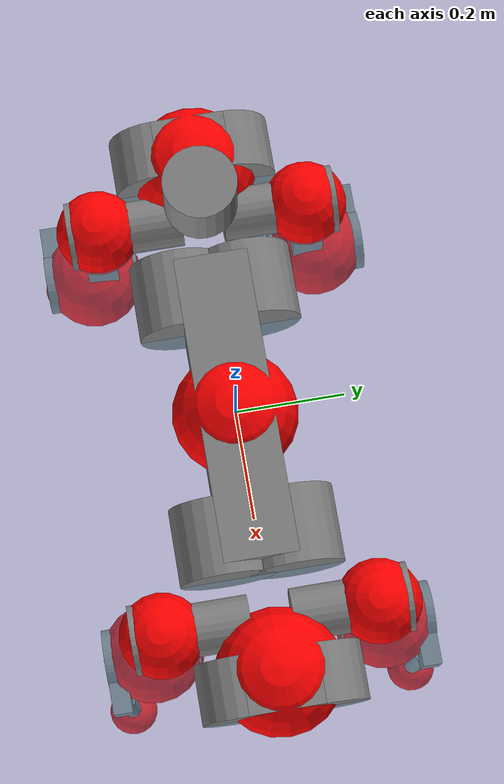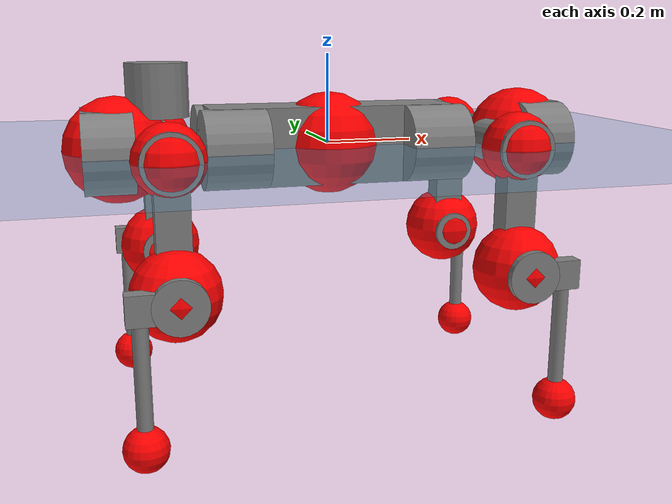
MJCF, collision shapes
<mujoco model="anymal_c">
  <compiler angle="radian" assetdir="assets" balanceinertia="true" inertiafromgeom="false"/>

  <option timestep="0.005" density="1.2" viscosity="2e-05"/>

  <size nkey="1"/>

  <visual>
    <quality shadowsize="8192"/>
    <map shadowclip="0.5"/>
  </visual>

  <default>
    <default class="/">
      <material specular="0" shininess="0.25"/>
      <geom contype="0" conaffinity="0" group="1" solref="-1000 -80"/>
      <site size="0.01 0.005 0.005" group="5"/>
      <general forcelimited="true" forcerange="-80 80" biastype="affine" gainprm="80" biasprm="0 -80 -2"/>
      <default class="anymal_c">
        <joint armature="0.01" damping="0.01" frictionloss="0.1"/>
        <default class="visual">
          <geom type="mesh" group="2"/>
          <default class="visual_zflip"/>
        </default>
        <default class="collision">
          <geom type="cylinder" group="3"/>
          <default class="foot">
            <geom size="0.03 0 0" type="sphere" condim="6" priority="1" friction="0.8 0.02 0.01" solimp="0.015 1 0.03"/>
          </default>
        </default>
      </default>
      <default class="reward_collision_sphere">
        <geom group="5" rgba="1 0 0 1"/>
      </default>
    </default>
  </default>

  <asset>
    <texture type="skybox" colorspace="auto" name="//unnamed_texture_0" builtin="gradient" rgb1="0.95 0.95 0.95" rgb2="0.95 0.95 0.95" width="100" height="600"/>
    <texture type="2d" colorspace="auto" name="texplane" builtin="checker" rgb1="0.345 0.575 0.748" rgb2="0.345 0.575 0.748" markrgb="1 1 1" width="512" height="512"/>
    <texture type="2d" colorspace="linear" name="base" file="base.png"/>
    <texture type="2d" colorspace="linear" name="top_shell" file="top_shell.png"/>
    <texture type="2d" colorspace="linear" name="bottom_shell" file="bottom_shell.png"/>
    <texture type="2d" colorspace="linear" name="remote" file="remote.png"/>
    <texture type="2d" colorspace="linear" name="hatch" file="hatch.png"/>
    <texture type="2d" colorspace="linear" name="handle" file="handle.png"/>
    <texture type="2d" colorspace="linear" name="face" file="face.png"/>
    <texture type="2d" colorspace="linear" name="battery" file="battery.png"/>
    <texture type="2d" colorspace="linear" name="lidar_cage" file="lidar_cage.png"/>
    <texture type="2d" colorspace="linear" name="depth_camera" file="depth_camera.png"/>
    <texture type="2d" colorspace="linear" name="wide_angle_camera" file="wide_angle_camera.png"/>
    <texture type="2d" colorspace="linear" name="lidar" file="lidar.png"/>
    <texture type="2d" colorspace="linear" name="drive" file="drive.png"/>
    <texture type="2d" colorspace="linear" name="hip_l" file="hip_l.png"/>
    <texture type="2d" colorspace="linear" name="shank_l" file="shank_l.png"/>
    <texture type="2d" colorspace="linear" name="foot" file="foot.png"/>
    <texture type="2d" colorspace="linear" name="thigh" file="thigh.png"/>
    <texture type="2d" colorspace="linear" name="shank_r" file="shank_r.png"/>
    <texture type="2d" colorspace="linear" name="hip_r" file="hip_r.png"/>
    <material name="MatPlane" class="/" texture="texplane" texuniform="true" texrepeat="2 2" specular="0.9" shininess="0.5"/>
    <material name="black_plastic" class="/" rgba="0.007 0.007 0.007 1"/>
    <material name="green" class="/" rgba="0.052 0.178 0.033 1"/>
    <material name="red" class="/" rgba="0.178 0.006 0.005 1"/>
    <material name="yellow" class="/" rgba="0.178 0.119 0.006 1"/>
    <material name="lwl" class="/" rgba="0.8 0.8 0.8 1"/>
    <material name="base" class="/" texture="base"/>
    <material name="top_shell" class="/" texture="top_shell"/>
    <material name="bottom_shell" class="/" texture="bottom_shell"/>
    <material name="hip_l" class="/" texture="hip_l"/>
    <material name="thigh" class="/" texture="thigh"/>
    <material name="shank_l" class="/" texture="shank_l"/>
    <material name="foot" class="/" texture="foot"/>
    <material name="hip_r" class="/" texture="hip_r"/>
    <material name="shank" class="/" texture="shank_r"/>
    <material name="hatch" class="/" texture="hatch"/>
    <material name="remote" class="/" texture="remote"/>
    <material name="handle" class="/" texture="handle"/>
    <material name="face" class="/" texture="face"/>
    <material name="depth_camera" class="/" texture="depth_camera"/>
    <material name="wide_angle_camera" class="/" texture="wide_angle_camera"/>
    <material name="battery" class="/" texture="battery"/>
    <material name="lidar_cage" class="/" texture="lidar_cage"/>
    <material name="lidar" class="/" texture="lidar"/>
    <material name="drive" class="/" texture="drive"/>
    <mesh name="base_0" class="/" file="base_0.obj"/>
    <mesh name="base_1" class="/" file="base_1.obj"/>
    <mesh name="base_2" class="/" file="base_2.obj"/>
    <mesh name="base_3" class="/" file="base_3.obj"/>
    <mesh name="base_4" class="/" file="base_4.obj"/>
    <mesh name="base_5" class="/" file="base_5.obj"/>
    <mesh name="top_shell" class="/" file="top_shell.obj"/>
    <mesh name="bottom_shell" class="/" file="bottom_shell.obj"/>
    <mesh name="remote" class="/" file="remote.obj"/>
    <mesh name="handle" class="/" file="handle.obj"/>
    <mesh name="face" class="/" file="face.obj"/>
    <mesh name="wide_angle_camera" class="/" file="wide_angle_camera.obj"/>
    <mesh name="depth_camera" class="/" file="depth_camera.obj"/>
    <mesh name="battery" class="/" file="battery.obj"/>
    <mesh name="lidar_cage" class="/" file="lidar_cage.obj"/>
    <mesh name="lidar" class="/" file="lidar.obj"/>
    <mesh name="drive" class="/" file="drive.obj"/>
    <mesh name="hip_l" class="/" file="hip_l.obj"/>
    <mesh name="thigh" class="/" file="thigh.obj"/>
    <mesh name="shank_l" class="/" file="shank_l.obj"/>
    <mesh name="foot" class="/" file="foot.obj"/>
    <mesh name="hip_r" class="/" file="hip_r.obj"/>
    <mesh name="hatch" class="/" file="hatch.obj"/>
    <mesh name="shank_r" class="/" file="shank_r.obj"/>
  </asset>

  <worldbody>
    <geom name="floor" class="/" size="100 100 0.125" type="plane" group="0" material="MatPlane"/>
    <light name="toplight_shadow" class="/" pos="0 0 5" dir="0.0990148 0.0990148 -0.990148" type="directional" ambient="0.04 0.04 0.04" diffuse="0.55 0.55 0.55" specular="0.12 0.12 0.12"/>
    <light name="toplight_fill" class="/" pos="0 0 5" dir="0.0990148 0.0990148 -0.990148" type="directional" castshadow="false" ambient="0.04 0.04 0.04" diffuse="0.3 0.3 0.3" specular="0.08 0.08 0.08"/>
    <body name="trunk" childclass="anymal_c" pos="0.0017884 -0.0010275 -0.000459634" quat="1 -0.000124282 0.000229009 -8.64489e-05">
      <inertial pos="0.0024626 -0.000327683 0.0467698" quat="0.501119 0.498352 0.498849 0.501672" mass="17.0461" diaginertia="0.864412 0.366186 0.16672"/>
      <joint name="//unnamed_joint_0" type="free" armature="0" damping="0" frictionloss="0"/>
      <geom name="//unnamed_geom_1" class="visual" material="green" mesh="base_0"/>
      <geom name="//unnamed_geom_2" class="visual" material="yellow" mesh="base_1"/>
      <geom name="//unnamed_geom_3" class="visual" material="red" mesh="base_2"/>
      <geom name="//unnamed_geom_4" class="visual" material="black_plastic" mesh="base_3"/>
      <geom name="//unnamed_geom_5" class="visual" material="lwl" mesh="base_4"/>
      <geom name="//unnamed_geom_6" class="visual" material="base" mesh="base_5"/>
      <geom name="trunk_1" class="collision" size="0.280339 0.067668 0.0870017" type="box"/>
      <geom name="trunk_2" class="collision" size="0.0870017 0.0700847" pos="0.229364 0.0627905 0" quat="0.707107 0 0.707107 0"/>
      <geom name="trunk_3" class="collision" size="0.0870017 0.0700847" pos="-0.229364 0.0627905 0" quat="0.707107 0 0.707107 0"/>
      <geom name="trunk_4" class="collision" size="0.0870017 0.0700847" pos="0.229364 -0.0627905 0" quat="0.707107 0 0.707107 0"/>
      <geom name="trunk_5" class="collision" size="0.0870017 0.0700847" pos="-0.229364 -0.0627905 0" quat="0.707107 0 0.707107 0"/>
      <geom name="//unnamed_geom_12" class="visual" material="top_shell" mesh="top_shell"/>
      <geom name="//unnamed_geom_13" class="visual" material="bottom_shell" mesh="bottom_shell"/>
      <geom name="//unnamed_geom_14" class="visual" material="remote" mesh="remote"/>
      <geom name="//unnamed_geom_15" class="visual" material="handle" mesh="handle"/>
      <geom name="//unnamed_geom_16" class="visual" pos="0.43711 0 0" quat="1 0 0 0" material="face" mesh="face"/>
      <geom name="trunk_6" class="collision" size="0.0531677 0.067668 0.0870017" pos="0.49511 0 0" type="box"/>
      <geom name="//unnamed_geom_18" class="collision" size="0.0870017 0.0531677" pos="0.49511 0.0627905 0" quat="0.707107 0 0.707107 0"/>
      <geom name="//unnamed_geom_19" class="collision" size="0.0870017 0.0531677" pos="0.49511 -0.0627905 0" quat="0.707107 0 0.707107 0"/>
      <geom name="//unnamed_geom_20" class="visual" pos="0.486828 0 -0.0268903" quat="0.965926 0 0.258819 0" material="depth_camera" mesh="depth_camera"/>
      <geom name="//unnamed_geom_21" class="visual" pos="0.540983 0 0.0141991" material="wide_angle_camera" mesh="wide_angle_camera"/>
      <geom name="//unnamed_geom_22" class="visual_zflip" pos="-0.43711 0 0" quat="0 0 0 1" material="face" mesh="face"/>
      <geom name="trunk_7" class="collision" size="0.0531677 0.067668 0.0870017" pos="-0.49511 0 0" quat="0 0 0 1" type="box"/>
      <geom name="//unnamed_geom_24" class="collision" size="0.0870017 0.0531677" pos="-0.49511 -0.0627905 0" quat="0 -0.707107 0 0.707107"/>
      <geom name="//unnamed_geom_25" class="collision" size="0.0870017 0.0531677" pos="-0.49511 0.0627905 0" quat="0 -0.707107 0 0.707107"/>
      <geom name="//unnamed_geom_26" class="visual" pos="-0.486828 0 -0.0268903" quat="0 -0.258819 0 0.965926" material="depth_camera" mesh="depth_camera"/>
      <geom name="//unnamed_geom_27" class="visual_zflip" pos="-0.540983 0 0.0141991" quat="0 0 0 1" material="wide_angle_camera" mesh="wide_angle_camera"/>
      <geom name="//unnamed_geom_28" class="visual" material="battery" mesh="battery"/>
      <geom name="//unnamed_geom_29" class="visual" pos="0 0.0665135 0.0283599" quat="0.683013 -0.183013 0.183013 0.683013" material="depth_camera" mesh="depth_camera"/>
      <geom name="//unnamed_geom_30" class="visual" pos="0 -0.0665135 0.0283599" quat="0.683013 0.183013 0.183013 -0.683013" material="depth_camera" mesh="depth_camera"/>
      <geom name="//unnamed_geom_31" class="visual" pos="-0.383856 0 0.0697148" quat="1 0 0 0" material="lidar_cage" mesh="lidar_cage"/>
      <geom name="trunk_8" class="collision" size="0.067668 0.0580011" pos="-0.383856 0 0.126625"/>
      <geom name="//unnamed_geom_33" class="visual" pos="-0.383856 -6.18938e-05 0.134877" quat="0.707107 0 0 -0.707107" material="lidar" mesh="lidar"/>
      <geom name="//unnamed_geom_34" class="visual" pos="0.316259 0.093307 -8.88284e-10" quat="0.258819 0.965926 0 0" material="drive" mesh="drive"/>
      <geom name="//unnamed_geom_35" class="visual" pos="0.316259 -0.093307 8.88284e-10" quat="0.258819 -0.965926 0 0" material="drive" mesh="drive"/>
      <geom name="//unnamed_geom_36" class="visual" pos="-0.316259 0.093307 8.88284e-10" quat="0 0 0.965926 -0.258819" material="drive" mesh="drive"/>
      <geom name="//unnamed_geom_37" class="visual" pos="-0.316259 -0.093307 -8.88284e-10" quat="0 0 -0.965926 -0.258819" material="drive" mesh="drive"/>
      <geom name="//unnamed_geom_38" class="visual" pos="0.122328 0 0.0692406" quat="1 0 0 0" material="hatch" mesh="hatch"/>
      <geom name="//unnamed_geom_39" class="reward_collision_sphere" size="0.116002"/>
      <geom name="//unnamed_geom_40" class="reward_collision_sphere" size="0.116002" pos="0.474547 0 0"/>
      <geom name="//unnamed_geom_41" class="reward_collision_sphere" size="0.116002" pos="-0.474547 0 0"/>
      <site name="imu" pos="0.25855 0.00559052 0.0326861" size="0.00966685"/>
      <camera name="track" pos="0 -1.79401 0" quat="0.707107 0.707107 0 0" mode="trackcom"/>
      <camera name="ego_camera" pos="0.474547 0 -0.0379401" quat="-0.5 -0.5 0.5 0.5"/>
      <body name="LF_HIP" pos="0.316965 0.0938334 0.00111067" quat="0.258485 0.966015 0.000507947 0.000380094">
        <inertial pos="0.05774 -0.0124081 -0.00748742" quat="-0.127839 0.709829 -0.134853 0.679423" mass="2.52329" diaginertia="0.0076646 0.00283478 0.00251152"/>
        <joint name="LF_HAA" pos="0 0 0" axis="0.999895 -0.0143461 0.00191251" range="-0.729147 0.491105" armature="0.00858549" damping="0.00955011" frictionloss="0.0929738"/>
        <geom name="//unnamed_geom_42" class="visual" pos="0 -5.22537e-05 8.58263e-06" quat="0.258819 -0.965926 0 0" material="hip_l" mesh="hip_l"/>
        <geom name="//unnamed_geom_43" class="visual" pos="0.0631674 -0.0744848 -0.0433847" quat="0.183013 -0.683013 0.683013 0.183013" material="drive" mesh="drive"/>
        <geom name="//unnamed_geom_44" class="collision" size="0.0483343 0.067668" pos="0.0631674 -0.010728 -0.0065494" quat="-0.353553 -0.612372 0.612372 -0.353553"/>
        <body name="LF_THIGH" pos="0.0638054 -0.0646313 -0.040151" quat="0.182646 -0.683107 0.682962 0.183216">
          <inertial pos="0.0326403 8.17442e-06 -0.2353" quat="0.993135 -0.00806746 -0.0785526 0.0863012" mass="2.81471" diaginertia="0.0398453 0.0175696 0.00326128"/>
          <joint name="LF_HFE" pos="0 0 0" axis="0.999996 0.001321 0.00258227" range="-3.16359 3.13908" armature="0.0103735" damping="0.0109192" frictionloss="0.0982883"/>
          <geom name="//unnamed_geom_45" class="visual" pos="0.00313445 4.93917e-06 0" quat="0.707107 0 0 -0.707107" material="thigh" mesh="thigh"/>
          <geom name="//unnamed_geom_46" class="collision" size="0.0628346 0.0386674" pos="0.0421819 0 0" quat="0.5 0.5 -0.5 -0.5"/>
          <geom name="//unnamed_geom_47" class="collision" size="0.0362507 0.0290006 0.136606" pos="0.0316364 0 -0.134037" quat="0.707107 0 0 -0.707107" type="box"/>
          <geom name="//unnamed_geom_48" class="visual" pos="0.105771 0 -0.270323" quat="1 0 0 0" material="drive" mesh="drive"/>
          <geom name="//unnamed_geom_49" class="collision" size="0.0483343 0.067668" pos="0.0319528 0 -0.270323" quat="0.707107 0 0.707107 0"/>
          <geom name="//unnamed_geom_50" class="reward_collision_sphere" size="0.0773348" pos="0.0263637 0 0"/>
          <body name="LF_SHANK" pos="0.106118 -0.00274147 -0.269638" quat="1 0.00020089 -0.000104809 3.6053e-05">
            <inertial pos="0.00495821 -0.0545205 -0.0766968" quat="0.992073 -0.120809 -0.00188805 -0.0345231" mass="0.529632" diaginertia="0.0130848 0.00536323 0.000842171"/>
            <joint name="LF_KFE" pos="0 0 0" axis="0.99999 0.00348207 -0.00281181" range="-3.14327 3.1363" armature="0.00967252" damping="0.00333218" frictionloss="0.099303"/>
            <geom name="//unnamed_geom_51" class="visual" pos="0.00102208 0.00544977 0" quat="0.707107 0 0 -0.707107" material="shank_l" mesh="shank_l"/>
            <geom name="LF_kfe_act" class="collision" size="0.0580011 0.0193337" pos="0.021091 0 0" quat="0.5 0.5 -0.5 -0.5"/>
            <geom name="//unnamed_geom_53" class="collision" size="0.0555834 0.0326256 0.018367" pos="0.021091 -0.051577 0" quat="0.5 0.5 -0.5 -0.5" type="box"/>
            <geom name="//unnamed_geom_54" class="visual" pos="0.0137616 -0.0771355 -0.320565" quat="0.382683 0 0 -0.92388" material="foot" mesh="foot"/>
            <geom name="LF_calf" class="collision" size="0.016917 0.136546" pos="0.0137619 -0.0788918 -0.160282" quat="0.707107 0 0 -0.707107"/>
            <geom name="LF_foot" class="foot" size="0.029956" pos="0.0137619 -0.0788918 -0.299224" quat="0.707107 0 0 -0.707107"/>
            <geom name="//unnamed_geom_57" class="reward_collision_sphere" size="0.0966685" pos="-0.0527274 0 0"/>
            <geom name="//unnamed_geom_58" class="reward_collision_sphere" size="0.0483343" pos="0.0137619 -0.0788918 -0.299224"/>
            <site name="LF_foot" class="foot" pos="0.0137619 -0.0788918 -0.299224" quat="0.707107 0 0 -0.707107" size="0.00966685"/>
          </body>
        </body>
      </body>
      <body name="RF_HIP" pos="0.314467 -0.0915824 -0.000534194" quat="0.258841 -0.96592 5.93995e-05 1.47773e-05">
        <inertial pos="0.0621867 0.0131095 -0.00993649" quat="0.135148 0.678911 0.128364 0.710167" mass="2.59056" diaginertia="0.00781594 0.00292731 0.00259179"/>
        <joint name="RF_HAA" pos="0 0 0" axis="0.999943 -0.0105776 -0.00153823" range="-0.534607 0.730937" armature="0.00978553" damping="0.0128423" frictionloss="0.0898677"/>
        <geom name="//unnamed_geom_59" class="visual" pos="0 5.22533e-05 8.58261e-06" quat="0.258819 0.965926 0 0" material="hip_r" mesh="hip_r"/>
        <geom name="//unnamed_geom_60" class="visual" pos="0.0631674 0.0744848 -0.0433847" quat="0.183013 0.683013 0.683013 -0.183013" material="drive" mesh="drive"/>
        <geom name="//unnamed_geom_61" class="collision" size="0.0483343 0.067668" pos="0.0631674 0.010728 -0.0065494" quat="-0.353553 0.612372 0.612372 0.353553"/>
        <body name="RF_THIGH" pos="0.063587 0.0659638 -0.0403685" quat="0.182933 0.682898 0.683163 -0.182961">
          <inertial pos="0.0332745 0.00236331 -0.233402" quat="0.992764 -0.00481051 -0.0808301 0.0886722" mass="2.7399" diaginertia="0.0392281 0.017184 0.00317346"/>
          <joint name="RF_HFE" pos="0 0 0" axis="0.999989 -0.000923245 -0.00469171" stiffness="0.00248422" range="-3.15146 3.12556" armature="0.0101012" damping="0.00200018" frictionloss="0.0962128"/>
          <geom name="//unnamed_geom_62" class="visual" pos="0.00313445 4.93917e-06 0" quat="0.707107 0 0 -0.707107" material="thigh" mesh="thigh"/>
          <geom name="//unnamed_geom_63" class="collision" size="0.0628346 0.0386674" pos="0.0421819 0 0" quat="0.5 0.5 0.5 0.5"/>
          <geom name="//unnamed_geom_64" class="collision" size="0.0362507 0.0290006 0.136606" pos="0.0316364 0 -0.134037" quat="0.707107 0 0 0.707107" type="box"/>
          <geom name="//unnamed_geom_65" class="visual" pos="0.105771 0 -0.270323" quat="1 0 0 0" material="drive" mesh="drive"/>
          <geom name="//unnamed_geom_66" class="collision" size="0.0483343 0.067668" pos="0.0319528 0 -0.270323" quat="0.707107 0 0.707107 0"/>
          <geom name="//unnamed_geom_67" class="reward_collision_sphere" size="0.0773348" pos="0.0263637 0 0"/>
          <body name="RF_SHANK" pos="0.105316 -0.000876013 -0.268531" quat="0.999999 0.000800621 -0.000389715 -0.000792841">
            <inertial pos="0.00843994 0.0548167 -0.0748337" quat="0.992933 0.11592 -0.00107021 0.0254168" mass="0.520386" diaginertia="0.0131044 0.00545205 0.000881365"/>
            <joint name="RF_KFE" pos="0 0 0" axis="1 -0.000443826 9.56345e-05" range="-3.17565 3.12804" armature="0.00984237" damping="0.0175553" frictionloss="0.104885"/>
            <geom name="//unnamed_geom_68" class="visual" pos="0.00102207 -0.00544976 0" quat="0.707107 0 0 0.707107" material="shank" mesh="shank_r"/>
            <geom name="RF_kfe_act" class="collision" size="0.0580011 0.0193337" pos="0.021091 0 0" quat="0.5 0.5 0.5 0.5"/>
            <geom name="//unnamed_geom_70" class="collision" size="0.0555834 0.0326256 0.018367" pos="0.021091 0.051577 0" quat="0.5 0.5 0.5 0.5" type="box"/>
            <geom name="//unnamed_geom_71" class="visual" pos="0.0137621 0.0771355 -0.320565" quat="0.382683 0 0 0.92388" material="foot" mesh="foot"/>
            <geom name="RF_calf" class="collision" size="0.016917 0.136546" pos="0.0137619 0.0788918 -0.160282" quat="0.707107 0 0 0.707107"/>
            <geom name="RF_foot" class="foot" size="0.0288028" pos="0.0137619 0.0788918 -0.299224" quat="0.707107 0 0 0.707107"/>
            <geom name="//unnamed_geom_74" class="reward_collision_sphere" size="0.0966685" pos="-0.0527274 0 0"/>
            <geom name="//unnamed_geom_75" class="reward_collision_sphere" size="0.0483343" pos="0.0137619 0.0788918 -0.299224"/>
            <site name="RF_foot" class="foot" pos="0.0137619 0.0788918 -0.299224" quat="0.707107 0 0 0.707107" size="0.00966685"/>
          </body>
        </body>
      </body>
      <body name="LH_HIP" pos="-0.31319 0.0921547 0.000471106" quat="7.53959e-05 0.000313759 0.965897 -0.258926">
        <inertial pos="0.0620581 0.0110392 -0.0077403" quat="0.128115 0.682465 0.128162 0.708098" mass="2.53257" diaginertia="0.00769975 0.00285144 0.00247432"/>
        <joint name="LH_HAA" pos="0 0 0" axis="0.999997 -6.93082e-05 0.00234851" range="-0.48735 0.702269" armature="0.00971154" damping="0.0101998" frictionloss="0.101636"/>
        <geom name="//unnamed_geom_76" class="visual" pos="0 5.22533e-05 8.58261e-06" quat="-0.258819 -0.965926 0 0" material="hip_r" mesh="hip_r"/>
        <geom name="//unnamed_geom_77" class="visual" pos="0.0631674 0.0744848 -0.0433847" quat="0.183013 0.683013 0.683013 -0.183013" material="drive" mesh="drive"/>
        <geom name="//unnamed_geom_78" class="collision" size="0.0483343 0.067668" pos="0.0631674 0.010728 -0.0065494" quat="-0.353553 0.612372 0.612372 0.353553"/>
        <body name="LH_THIGH" pos="0.0619976 0.0645372 -0.0401421" quat="0.183382 0.682919 0.683021 -0.182959">
          <inertial pos="0.0322958 0.00210771 -0.232408" quat="0.992828 -0.000296737 -0.0801266 0.0887227" mass="2.78439" diaginertia="0.0395875 0.0175681 0.00313915"/>
          <joint name="LH_HFE" pos="0 0 0" axis="0.999968 0.00800973 9.52295e-05" range="-3.13435 3.1405" armature="0.010679" damping="0.00403553" frictionloss="0.103688"/>
          <geom name="//unnamed_geom_79" class="visual" pos="0.00313445 4.93917e-06 0" quat="0.707107 0 0 -0.707107" material="thigh" mesh="thigh"/>
          <geom name="//unnamed_geom_80" class="collision" size="0.0628346 0.0386674" pos="0.0421819 0 0" quat="0.5 0.5 -0.5 -0.5"/>
          <geom name="//unnamed_geom_81" class="collision" size="0.0362507 0.0290006 0.136606" pos="0.0316364 0 -0.134037" quat="0.707107 0 0 -0.707107" type="box"/>
          <geom name="//unnamed_geom_82" class="visual" pos="0.105771 0 -0.270323" quat="1 0 0 0" material="drive" mesh="drive"/>
          <geom name="//unnamed_geom_83" class="collision" size="0.0483343 0.067668" pos="0.0319528 0 -0.270323" quat="0.707107 0 0.707107 0"/>
          <geom name="//unnamed_geom_84" class="reward_collision_sphere" size="0.0773348" pos="0.0263637 0 0"/>
          <body name="LH_SHANK" pos="0.106142 0.000563907 -0.273217" quat="0.999999 -0.000908295 -0.00071061 0.000682844">
            <inertial pos="0.0063322 0.054774 -0.0739806" quat="0.992738 0.117086 -0.0012582 0.0275675" mass="0.518389" diaginertia="0.0132859 0.00542139 0.000856451"/>
            <joint name="LH_KFE" pos="0 0 0" axis="0.999972 -0.00582799 0.00469751" range="-3.14925 3.13862" armature="0.0094328" damping="0.00709943" frictionloss="0.0916717"/>
            <geom name="//unnamed_geom_85" class="visual" pos="0.00102207 -0.00544976 0" quat="-0.707107 0 0 -0.707107" material="shank" mesh="shank_r"/>
            <geom name="LH_kfe_act" class="collision" size="0.0580011 0.0193337" pos="0.021091 0 0" quat="0.5 0.5 -0.5 -0.5"/>
            <geom name="//unnamed_geom_87" class="collision" size="0.0555834 0.0326256 0.018367" pos="0.021091 0.051577 0" quat="0.5 0.5 -0.5 -0.5" type="box"/>
            <geom name="//unnamed_geom_88" class="visual" pos="0.0137621 0.0771355 -0.320565" quat="-0.382683 0 0 -0.92388" material="foot" mesh="foot"/>
            <geom name="LH_calf" class="collision" size="0.016917 0.136546" pos="0.0137619 0.0788918 -0.160282" quat="0.707107 0 0 -0.707107"/>
            <geom name="LH_foot" class="foot" size="0.0290638" pos="0.0137619 0.0788918 -0.299224" quat="0.707107 0 0 -0.707107"/>
            <geom name="//unnamed_geom_91" class="reward_collision_sphere" size="0.0966685" pos="-0.0527274 0 0"/>
            <geom name="//unnamed_geom_92" class="reward_collision_sphere" size="0.0483343" pos="0.0137619 0.0788918 -0.299224"/>
            <site name="LH_foot" class="foot" pos="0.0137619 0.0788918 -0.299224" quat="0.707107 0 0 -0.707107" size="0.00966685"/>
          </body>
        </body>
      </body>
      <body name="RH_HIP" pos="-0.318372 -0.0944344 0.000302998" quat="-0.000524264 -0.000134908 -0.965892 -0.258944">
        <inertial pos="0.0604461 -0.0144173 -0.00782983" quat="-0.120258 0.715835 -0.133306 0.674795" mass="2.51588" diaginertia="0.00761049 0.00286323 0.00252621"/>
        <joint name="RH_HAA" pos="0 0 0" axis="0.999919 0.00354529 0.0122309" stiffness="0.00230673" range="-0.724999 0.471587" armature="0.0100497" damping="0.00664732" frictionloss="0.0952365"/>
        <geom name="//unnamed_geom_93" class="visual" pos="0 -5.22537e-05 8.58263e-06" quat="-0.258819 0.965926 0 0" material="hip_l" mesh="hip_l"/>
        <geom name="//unnamed_geom_94" class="visual" pos="0.0631674 -0.0744848 -0.0433847" quat="-0.183013 0.683013 -0.683013 -0.183013" material="drive" mesh="drive"/>
        <geom name="//unnamed_geom_95" class="collision" size="0.0483343 0.067668" pos="0.0631674 -0.010728 -0.0065494" quat="0.353553 0.612372 -0.612372 0.353553"/>
        <body name="RH_THIGH" pos="0.0632367 -0.0642585 -0.0382232" quat="-0.182856 0.683296 -0.682707 -0.183251">
          <inertial pos="0.0319009 -0.000608009 -0.233823" quat="0.99389 -0.014423 -0.0778093 0.0769484" mass="2.78422" diaginertia="0.0392777 0.0175927 0.00329897"/>
          <joint name="RH_HFE" pos="0 0 0" axis="1 -6.86759e-05 4.57155e-05" range="-3.14711 3.12292" armature="0.0102849" damping="0" frictionloss="0.100135"/>
          <geom name="//unnamed_geom_96" class="visual" pos="0.00313445 4.93917e-06 0" quat="0.707107 0 0 -0.707107" material="thigh" mesh="thigh"/>
          <geom name="//unnamed_geom_97" class="collision" size="0.0628346 0.0386674" pos="0.0421819 0 0" quat="0.5 0.5 0.5 0.5"/>
          <geom name="//unnamed_geom_98" class="collision" size="0.0362507 0.0290006 0.136606" pos="0.0316364 0 -0.134037" quat="0.707107 0 0 0.707107" type="box"/>
          <geom name="//unnamed_geom_99" class="visual" pos="0.105771 0 -0.270323" quat="1 0 0 0" material="drive" mesh="drive"/>
          <geom name="//unnamed_geom_100" class="collision" size="0.0483343 0.067668" pos="0.0319528 0 -0.270323" quat="0.707107 0 0.707107 0"/>
          <geom name="//unnamed_geom_101" class="reward_collision_sphere" size="0.0773348" pos="0.0263637 0 0"/>
          <body name="RH_SHANK" pos="0.105961 5.04349e-05 -0.270289" quat="1 -0.000106575 -0.000250337 0.000212337">
            <inertial pos="0.0041439 -0.0571357 -0.0744511" quat="0.99295 -0.116076 -0.000100713 -0.0240003" mass="0.537445" diaginertia="0.0131182 0.0054335 0.000854857"/>
            <joint name="RH_KFE" pos="0 0 0" axis="0.999984 0.00495072 -0.00281527" stiffness="0.0027152" range="-3.11106 3.17752" armature="0.00958535" damping="0.00614042" frictionloss="0.107303"/>
            <geom name="//unnamed_geom_102" class="visual" pos="0.00102208 0.00544977 0" quat="0.707107 0 0 -0.707107" material="shank_l" mesh="shank_l"/>
            <geom name="RH_kfe_act" class="collision" size="0.0580011 0.0193337" pos="0.021091 0 0" quat="0.5 0.5 0.5 0.5"/>
            <geom name="//unnamed_geom_104" class="collision" size="0.0555834 0.0326256 0.018367" pos="0.021091 -0.051577 0" quat="0.5 0.5 0.5 0.5" type="box"/>
            <geom name="//unnamed_geom_105" class="visual" pos="0.0137616 -0.0771355 -0.320565" quat="0.382683 0 0 -0.92388" material="foot" mesh="foot"/>
            <geom name="RH_calf" class="collision" size="0.016917 0.136546" pos="0.0137619 -0.0788918 -0.160282" quat="0.707107 0 0 0.707107"/>
            <geom name="RH_foot" class="foot" size="0.028573" pos="0.0137619 -0.0788918 -0.299224" quat="0.707107 0 0 0.707107"/>
            <geom name="//unnamed_geom_108" class="reward_collision_sphere" size="0.0966685" pos="-0.0527274 0 0"/>
            <geom name="//unnamed_geom_109" class="reward_collision_sphere" size="0.0483343" pos="0.0137619 -0.0788918 -0.299224"/>
            <site name="RH_foot" class="foot" pos="0.0137619 -0.0788918 -0.299224" quat="0.707107 0 0 0.707107" size="0.00966685"/>
          </body>
        </body>
      </body>
    </body>
  </worldbody>

  <contact>
    <pair class="/" geom1="floor" geom2="LF_foot" name="//unnamed_contact_0"/>
    <pair class="/" geom1="floor" geom2="RF_foot" name="//unnamed_contact_1"/>
    <pair class="/" geom1="floor" geom2="LH_foot" name="//unnamed_contact_2"/>
    <pair class="/" geom1="floor" geom2="RH_foot" name="//unnamed_contact_3"/>
  </contact>

  <actuator>
    <general name="LF_HAA" class="/" joint="LF_HAA" forcerange="-77.5145 77.5145" gainprm="77.6423" biasprm="0 -77.6423 -1.88654"/>
    <general name="LF_HFE" class="/" joint="LF_HFE" forcerange="-73.464 73.464" gainprm="77.6423" biasprm="0 -77.6423 -1.88654"/>
    <general name="LF_KFE" class="/" joint="LF_KFE" forcerange="-74.9869 74.9869" gainprm="77.6423" biasprm="0 -77.6423 -1.88654"/>
    <general name="RF_HAA" class="/" joint="RF_HAA" forcerange="-78.4398 78.4398" gainprm="77.6423" biasprm="0 -77.6423 -1.88654"/>
    <general name="RF_HFE" class="/" joint="RF_HFE" forcerange="-78.6661 78.6661" gainprm="77.6423" biasprm="0 -77.6423 -1.88654"/>
    <general name="RF_KFE" class="/" joint="RF_KFE" forcerange="-77.2563 77.2563" gainprm="77.6423" biasprm="0 -77.6423 -1.88654"/>
    <general name="LH_HAA" class="/" joint="LH_HAA" forcerange="-77.6091 77.6091" gainprm="77.6423" biasprm="0 -77.6423 -1.88654"/>
    <general name="LH_HFE" class="/" joint="LH_HFE" forcerange="-78.1664 78.1664" gainprm="77.6423" biasprm="0 -77.6423 -1.88654"/>
    <general name="LH_KFE" class="/" joint="LH_KFE" forcerange="-79.9868 79.9868" gainprm="77.6423" biasprm="0 -77.6423 -1.88654"/>
    <general name="RH_HAA" class="/" joint="RH_HAA" forcerange="-77.8039 77.8039" gainprm="77.6423" biasprm="0 -77.6423 -1.88654"/>
    <general name="RH_HFE" class="/" joint="RH_HFE" forcerange="-74.4255 74.4255" gainprm="77.6423" biasprm="0 -77.6423 -1.88654"/>
    <general name="RH_KFE" class="/" joint="RH_KFE" forcerange="-70.5929 70.5929" gainprm="77.6423" biasprm="0 -77.6423 -1.88654"/>
  </actuator>

  <sensor>
    <gyro site="imu" name="imu_angular_velocity"/>
    <velocimeter site="imu" name="imu_linear_velocity"/>
    <framelinvel objtype="site" objname="LF_foot" name="LF_foot_global_linear_velocity"/>
    <framelinvel objtype="site" objname="RF_foot" name="RF_foot_global_linear_velocity"/>
    <framelinvel objtype="site" objname="LH_foot" name="LH_foot_global_linear_velocity"/>
    <framelinvel objtype="site" objname="RH_foot" name="RH_foot_global_linear_velocity"/>
  </sensor>

  <keyframe>
    <key name="home" qpos="0 0 0.55 1 0 0 0 0 0.4 -0.8 0 -0.4 0.8 0 -0.4 0.8 0 0.4 -0.8"/>
  </keyframe>
</mujoco>
